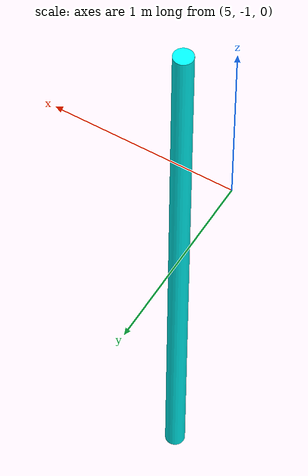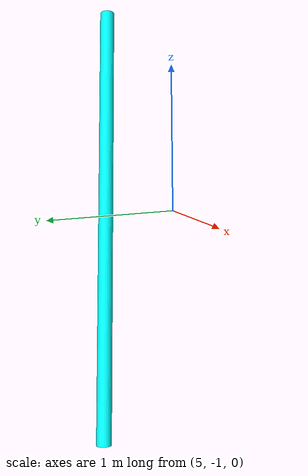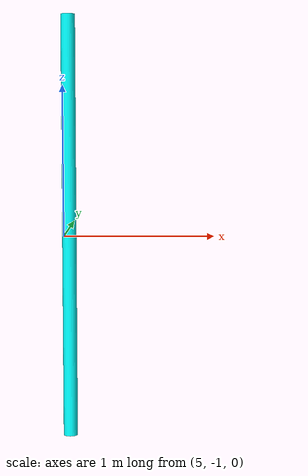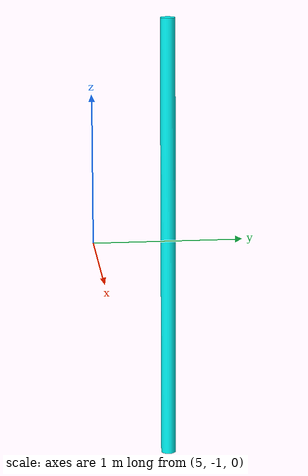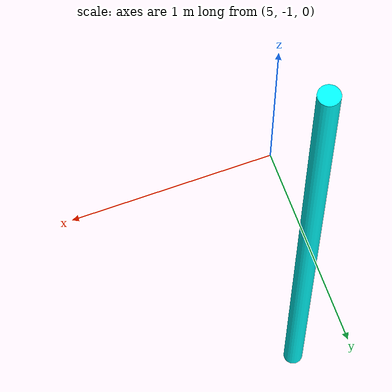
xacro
<?xml version="1.0"?>
<robot name="trees" xmlns:xacro="http://ros.org/wiki/xacro">
<xacro:arg name="mesh_name" default="trees.stl"/>
<xacro:arg name="terrain_scale_x" default="1"/>
<xacro:arg name="terrain_scale_y" default="1"/>
<xacro:arg name="terrain_scale_z" default="1"/>
<xacro:arg name="terrain_pos_x" default="5"/>
<xacro:arg name="terrain_pos_y" default="0"/>
<xacro:arg name="terrain_pos_z" default="0"/>

 <material name="White">
    <color rgba="${0/255} ${0/255} ${0/255} 1.0"/>
  </material>

 <material name="Black">
    <color rgba="${0/255} ${0/255} ${0/255} 1.0"/>
  </material>

 <material name="Red">
    <color rgba="${255/255} ${100/255} ${0/255} 1.0"/>
  </material>

 <material name="Brown">
    <color rgba="${198/255} ${94/255} ${42/255} 1.0"/>
  </material>

 <material name="DarkBrown">
    <color rgba="${144/255} ${68/255} ${30/255} 1.0"/>
  </material>

<material name="orange">
  <color rgba="0.8 0.4 0.0 1.0"/>
</material>

<link name="tree1">
	<inertial>
		<mass value="10"/>
		<inertia ixx="0.4" ixy="0.0" ixz="0.0" iyy="0.4" iyz="0.0" izz="0.2"/>
	</inertial>

	<visual > <!-- dont put name otherwise gazebo discards color-->
		<origin xyz="$(arg terrain_pos_x) ${$(arg terrain_pos_y)-0.5} $(arg terrain_pos_z)" rpy="0 0 0"/>
		<geometry>
	                  <cylinder length="3" radius="0.05"/>

	         </geometry>
		 <material name="Cyan">
         		<color rgba="0 1.0 1.0 1.0"/>
  	    	</material>

	</visual>

	<collision>
		<origin xyz="$(arg terrain_pos_x) ${$(arg terrain_pos_y)-0.5} $(arg terrain_pos_z)" rpy="0 0 0"/>
		<geometry>
			     <cylinder length="3" radius="0.05"/>
		</geometry>

	</collision>

</link>

<gazebo>
    <static>true</static>
</gazebo>

 <!--one of this /usr/share/gazebo-11/media/materials/scripts/gazebo.material   is for gazebo -->

</robot>
